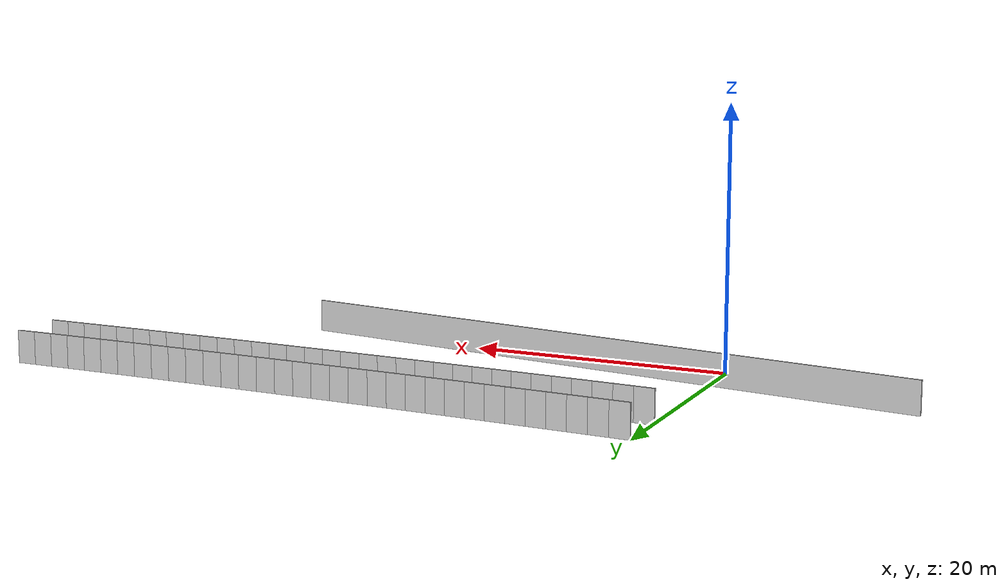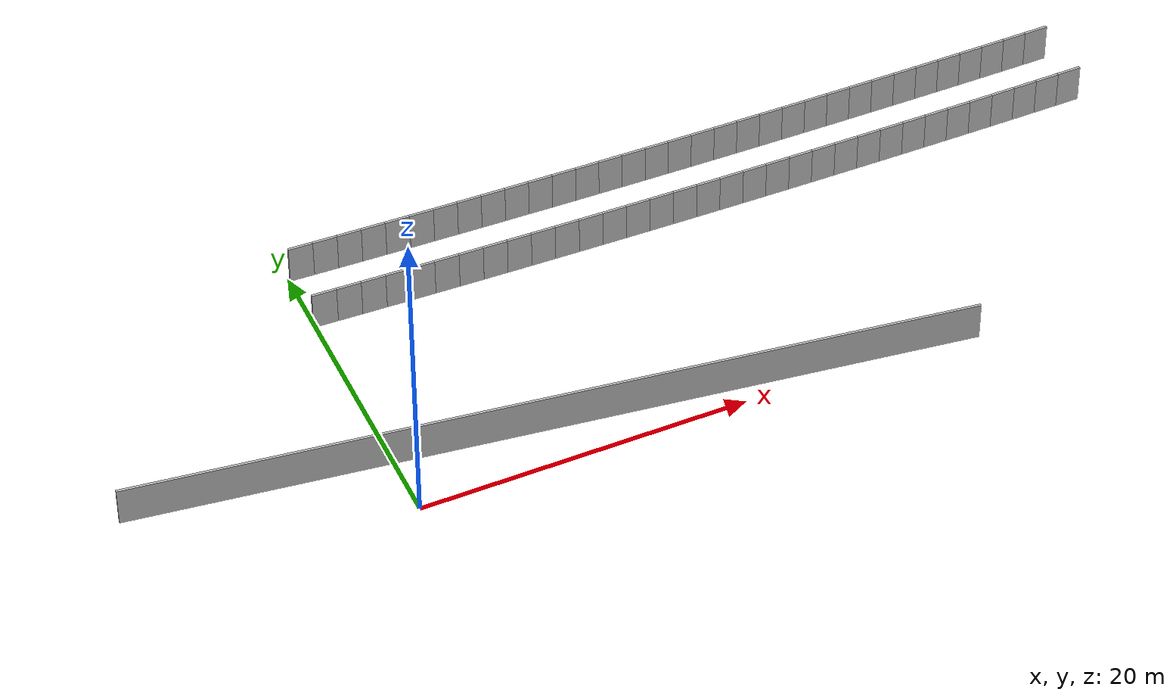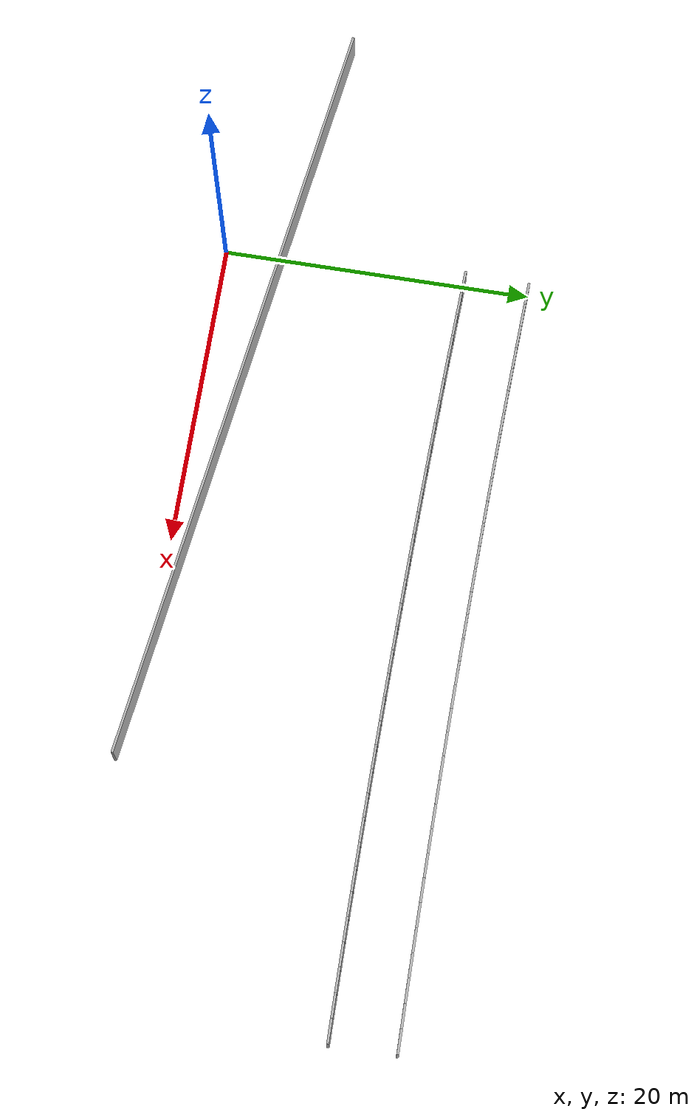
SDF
<?xml version="1.0" ?>
<sdf version="1.6">
  <model name="sps_2503">
    <pose frame="">0 0 0 0 -0 0</pose>
    <static>1</static>
    <self_collide>0</self_collide>
    <allow_auto_disable>0</allow_auto_disable>
    <link name="Wall560">
      <kinematic>0</kinematic>
      <gravity>1</gravity>
      <self_collide>0</self_collide>
      <collision name="collision">
        <geometry>
          <box>
            <size>50.4483 0.15 2.5</size>
          </box>
        </geometry>
        <pose frame="">0 0 0 0 -0 0</pose>
      </collision>
      <visual name="visual">
        <geometry>
          <box>
            <size>50.4483 0.15 2.5</size>
          </box>
        </geometry>
        <pose frame="">0 0 0 0 -0 0</pose>
        <cast_shadows>1</cast_shadows>
        <transparency>0.0</transparency>
      </visual>
      <pose frame="">9.46944 2.58366 1.25 0 0 -0.133417</pose>
    </link>
    <link name="Wall3638">
      <kinematic>0</kinematic>
      <gravity>1</gravity>
      <self_collide>0</self_collide>
      <collision name="collision">
        <geometry>
          <box>
            <size>1.49649 0.15 2.5</size>
          </box>
        </geometry>
        <pose frame="">0 0 0 0 -0 0</pose>
      </collision>
      <visual name="visual">
        <geometry>
          <box>
            <size>1.49649 0.15 2.5</size>
          </box>
        </geometry>
        <pose frame="">0 0 0 0 -0 0</pose>
        <cast_shadows>1</cast_shadows>
        <transparency>0.0</transparency>
      </visual>
      <pose frame="">0.814445 19.8738 1.25 0 0 -0.0418582</pose>
    </link>
    <link name="Wall3639">
      <kinematic>0</kinematic>
      <gravity>1</gravity>
      <self_collide>0</self_collide>
      <collision name="collision">
        <geometry>
          <box>
            <size>1.49645 0.15 2.5</size>
          </box>
        </geometry>
        <pose frame="">0 0 0 0 -0 0</pose>
      </collision>
      <visual name="visual">
        <geometry>
          <box>
            <size>1.49645 0.15 2.5</size>
          </box>
        </geometry>
        <pose frame="">0 0 0 0 -0 0</pose>
        <cast_shadows>1</cast_shadows>
        <transparency>0.0</transparency>
      </visual>
      <pose frame="">2.30965 19.8124 1.25 0 0 -0.0402265</pose>
    </link>
    <link name="Wall3640">
      <kinematic>0</kinematic>
      <gravity>1</gravity>
      <self_collide>0</self_collide>
      <collision name="collision">
        <geometry>
          <box>
            <size>1.49649 0.15 2.5</size>
          </box>
        </geometry>
        <pose frame="">0 0 0 0 -0 0</pose>
      </collision>
      <visual name="visual">
        <geometry>
          <box>
            <size>1.49649 0.15 2.5</size>
          </box>
        </geometry>
        <pose frame="">0 0 0 0 -0 0</pose>
        <cast_shadows>1</cast_shadows>
        <transparency>0.0</transparency>
      </visual>
      <pose frame="">3.80495 19.7533 1.25 0 0 -0.0387561</pose>
    </link>
    <link name="Wall3641">
      <kinematic>0</kinematic>
      <gravity>1</gravity>
      <self_collide>0</self_collide>
      <collision name="collision">
        <geometry>
          <box>
            <size>1.49663 0.15 2.5</size>
          </box>
        </geometry>
        <pose frame="">0 0 0 0 -0 0</pose>
      </collision>
      <visual name="visual">
        <geometry>
          <box>
            <size>1.49663 0.15 2.5</size>
          </box>
        </geometry>
        <pose frame="">0 0 0 0 -0 0</pose>
        <cast_shadows>1</cast_shadows>
        <transparency>0.0</transparency>
      </visual>
      <pose frame="">5.30044 19.6966 1.25 0 0 -0.0370382</pose>
    </link>
    <link name="Wall3642">
      <kinematic>0</kinematic>
      <gravity>1</gravity>
      <self_collide>0</self_collide>
      <collision name="collision">
        <geometry>
          <box>
            <size>1.49655 0.15 2.5</size>
          </box>
        </geometry>
        <pose frame="">0 0 0 0 -0 0</pose>
      </collision>
      <visual name="visual">
        <geometry>
          <box>
            <size>1.49655 0.15 2.5</size>
          </box>
        </geometry>
        <pose frame="">0 0 0 0 -0 0</pose>
        <cast_shadows>1</cast_shadows>
        <transparency>0.0</transparency>
      </visual>
      <pose frame="">6.79604 19.6423 1.25 0 0 -0.035571</pose>
    </link>
    <link name="Wall3643">
      <kinematic>0</kinematic>
      <gravity>1</gravity>
      <self_collide>0</self_collide>
      <collision name="collision">
        <geometry>
          <box>
            <size>1.49647 0.15 2.5</size>
          </box>
        </geometry>
        <pose frame="">0 0 0 0 -0 0</pose>
      </collision>
      <visual name="visual">
        <geometry>
          <box>
            <size>1.49647 0.15 2.5</size>
          </box>
        </geometry>
        <pose frame="">0 0 0 0 -0 0</pose>
        <cast_shadows>1</cast_shadows>
        <transparency>0.0</transparency>
      </visual>
      <pose frame="">8.29165 19.5903 1.25 0 0 -0.0339406</pose>
    </link>
    <link name="Wall3644">
      <kinematic>0</kinematic>
      <gravity>1</gravity>
      <self_collide>0</self_collide>
      <collision name="collision">
        <geometry>
          <box>
            <size>1.49657 0.15 2.5</size>
          </box>
        </geometry>
        <pose frame="">0 0 0 0 -0 0</pose>
      </collision>
      <visual name="visual">
        <geometry>
          <box>
            <size>1.49657 0.15 2.5</size>
          </box>
        </geometry>
        <pose frame="">0 0 0 0 -0 0</pose>
        <cast_shadows>1</cast_shadows>
        <transparency>0.0</transparency>
      </visual>
      <pose frame="">9.78735 19.5407 1.25 0 0 -0.0323468</pose>
    </link>
    <link name="Wall3645">
      <kinematic>0</kinematic>
      <gravity>1</gravity>
      <self_collide>0</self_collide>
      <collision name="collision">
        <geometry>
          <box>
            <size>1.4965 0.15 2.5</size>
          </box>
        </geometry>
        <pose frame="">0 0 0 0 -0 0</pose>
      </collision>
      <visual name="visual">
        <geometry>
          <box>
            <size>1.4965 0.15 2.5</size>
          </box>
        </geometry>
        <pose frame="">0 0 0 0 -0 0</pose>
        <cast_shadows>1</cast_shadows>
        <transparency>0.0</transparency>
      </visual>
      <pose frame="">11.2831 19.4935 1.25 0 0 -0.030757</pose>
    </link>
    <link name="Wall3646">
      <kinematic>0</kinematic>
      <gravity>1</gravity>
      <self_collide>0</self_collide>
      <collision name="collision">
        <geometry>
          <box>
            <size>1.49648 0.15 2.5</size>
          </box>
        </geometry>
        <pose frame="">0 0 0 0 -0 0</pose>
      </collision>
      <visual name="visual">
        <geometry>
          <box>
            <size>1.49648 0.15 2.5</size>
          </box>
        </geometry>
        <pose frame="">0 0 0 0 -0 0</pose>
        <cast_shadows>1</cast_shadows>
        <transparency>0.0</transparency>
      </visual>
      <pose frame="">12.779 19.4487 1.25 0 0 -0.0291251</pose>
    </link>
    <link name="Wall3647">
      <kinematic>0</kinematic>
      <gravity>1</gravity>
      <self_collide>0</self_collide>
      <collision name="collision">
        <geometry>
          <box>
            <size>1.49654 0.15 2.5</size>
          </box>
        </geometry>
        <pose frame="">0 0 0 0 -0 0</pose>
      </collision>
      <visual name="visual">
        <geometry>
          <box>
            <size>1.49654 0.15 2.5</size>
          </box>
        </geometry>
        <pose frame="">0 0 0 0 -0 0</pose>
        <cast_shadows>1</cast_shadows>
        <transparency>0.0</transparency>
      </visual>
      <pose frame="">14.2749 19.4063 1.25 0 0 -0.0275328</pose>
    </link>
    <link name="Wall3648">
      <kinematic>0</kinematic>
      <gravity>1</gravity>
      <self_collide>0</self_collide>
      <collision name="collision">
        <geometry>
          <box>
            <size>1.49654 0.15 2.5</size>
          </box>
        </geometry>
        <pose frame="">0 0 0 0 -0 0</pose>
      </collision>
      <visual name="visual">
        <geometry>
          <box>
            <size>1.49654 0.15 2.5</size>
          </box>
        </geometry>
        <pose frame="">0 0 0 0 -0 0</pose>
        <cast_shadows>1</cast_shadows>
        <transparency>0.0</transparency>
      </visual>
      <pose frame="">15.7709 19.3662 1.25 0 0 -0.026064</pose>
    </link>
    <link name="Wall3649">
      <kinematic>0</kinematic>
      <gravity>1</gravity>
      <self_collide>0</self_collide>
      <collision name="collision">
        <geometry>
          <box>
            <size>1.4966 0.15 2.5</size>
          </box>
        </geometry>
        <pose frame="">0 0 0 0 -0 0</pose>
      </collision>
      <visual name="visual">
        <geometry>
          <box>
            <size>1.4966 0.15 2.5</size>
          </box>
        </geometry>
        <pose frame="">0 0 0 0 -0 0</pose>
        <cast_shadows>1</cast_shadows>
        <transparency>0.0</transparency>
      </visual>
      <pose frame="">17.267 19.3284 1.25 0 0 -0.0244719</pose>
    </link>
    <link name="Wall3650">
      <kinematic>0</kinematic>
      <gravity>1</gravity>
      <self_collide>0</self_collide>
      <collision name="collision">
        <geometry>
          <box>
            <size>1.49642 0.15 2.5</size>
          </box>
        </geometry>
        <pose frame="">0 0 0 0 -0 0</pose>
      </collision>
      <visual name="visual">
        <geometry>
          <box>
            <size>1.49642 0.15 2.5</size>
          </box>
        </geometry>
        <pose frame="">0 0 0 0 -0 0</pose>
        <cast_shadows>1</cast_shadows>
        <transparency>0.0</transparency>
      </visual>
      <pose frame="">18.7631 19.2931 1.25 0 0 -0.0227206</pose>
    </link>
    <link name="Wall3651">
      <kinematic>0</kinematic>
      <gravity>1</gravity>
      <self_collide>0</self_collide>
      <collision name="collision">
        <geometry>
          <box>
            <size>1.49655 0.15 2.5</size>
          </box>
        </geometry>
        <pose frame="">0 0 0 0 -0 0</pose>
      </collision>
      <visual name="visual">
        <geometry>
          <box>
            <size>1.49655 0.15 2.5</size>
          </box>
        </geometry>
        <pose frame="">0 0 0 0 -0 0</pose>
        <cast_shadows>1</cast_shadows>
        <transparency>0.0</transparency>
      </visual>
      <pose frame="">20.2592 19.2602 1.25 0 0 -0.02125</pose>
    </link>
    <link name="Wall3652">
      <kinematic>0</kinematic>
      <gravity>1</gravity>
      <self_collide>0</self_collide>
      <collision name="collision">
        <geometry>
          <box>
            <size>1.49645 0.15 2.5</size>
          </box>
        </geometry>
        <pose frame="">0 0 0 0 -0 0</pose>
      </collision>
      <visual name="visual">
        <geometry>
          <box>
            <size>1.49645 0.15 2.5</size>
          </box>
        </geometry>
        <pose frame="">0 0 0 0 -0 0</pose>
        <cast_shadows>1</cast_shadows>
        <transparency>0.0</transparency>
      </visual>
      <pose frame="">21.7554 19.2295 1.25 0 0 -0.0197828</pose>
    </link>
    <link name="Wall3653">
      <kinematic>0</kinematic>
      <gravity>1</gravity>
      <self_collide>0</self_collide>
      <collision name="collision">
        <geometry>
          <box>
            <size>1.49646 0.15 2.5</size>
          </box>
        </geometry>
        <pose frame="">0 0 0 0 -0 0</pose>
      </collision>
      <visual name="visual">
        <geometry>
          <box>
            <size>1.49646 0.15 2.5</size>
          </box>
        </geometry>
        <pose frame="">0 0 0 0 -0 0</pose>
        <cast_shadows>1</cast_shadows>
        <transparency>0.0</transparency>
      </visual>
      <pose frame="">23.2515 19.2012 1.25 0 0 -0.0180286</pose>
    </link>
    <link name="Wall3654">
      <kinematic>0</kinematic>
      <gravity>1</gravity>
      <self_collide>0</self_collide>
      <collision name="collision">
        <geometry>
          <box>
            <size>1.4966 0.15 2.5</size>
          </box>
        </geometry>
        <pose frame="">0 0 0 0 -0 0</pose>
      </collision>
      <visual name="visual">
        <geometry>
          <box>
            <size>1.4966 0.15 2.5</size>
          </box>
        </geometry>
        <pose frame="">0 0 0 0 -0 0</pose>
        <cast_shadows>1</cast_shadows>
        <transparency>0.0</transparency>
      </visual>
      <pose frame="">24.7479 19.1754 1.25 0 0 -0.0164361</pose>
    </link>
    <link name="Wall3655">
      <kinematic>0</kinematic>
      <gravity>1</gravity>
      <self_collide>0</self_collide>
      <collision name="collision">
        <geometry>
          <box>
            <size>1.49657 0.15 2.5</size>
          </box>
        </geometry>
        <pose frame="">0 0 0 0 -0 0</pose>
      </collision>
      <visual name="visual">
        <geometry>
          <box>
            <size>1.49657 0.15 2.5</size>
          </box>
        </geometry>
        <pose frame="">0 0 0 0 -0 0</pose>
        <cast_shadows>1</cast_shadows>
        <transparency>0.0</transparency>
      </visual>
      <pose frame="">26.2443 19.1519 1.25 0 0 -0.0149681</pose>
    </link>
    <link name="Wall3656">
      <kinematic>0</kinematic>
      <gravity>1</gravity>
      <self_collide>0</self_collide>
      <collision name="collision">
        <geometry>
          <box>
            <size>1.49653 0.15 2.5</size>
          </box>
        </geometry>
        <pose frame="">0 0 0 0 -0 0</pose>
      </collision>
      <visual name="visual">
        <geometry>
          <box>
            <size>1.49653 0.15 2.5</size>
          </box>
        </geometry>
        <pose frame="">0 0 0 0 -0 0</pose>
        <cast_shadows>1</cast_shadows>
        <transparency>0.0</transparency>
      </visual>
      <pose frame="">27.7407 19.1307 1.25 0 0 -0.0133777</pose>
    </link>
    <link name="Wall3657">
      <kinematic>0</kinematic>
      <gravity>1</gravity>
      <self_collide>0</self_collide>
      <collision name="collision">
        <geometry>
          <box>
            <size>1.49668 0.15 2.5</size>
          </box>
        </geometry>
        <pose frame="">0 0 0 0 -0 0</pose>
      </collision>
      <visual name="visual">
        <geometry>
          <box>
            <size>1.49668 0.15 2.5</size>
          </box>
        </geometry>
        <pose frame="">0 0 0 0 -0 0</pose>
        <cast_shadows>1</cast_shadows>
        <transparency>0.0</transparency>
      </visual>
      <pose frame="">29.2371 19.112 1.25 0 0 -0.0116226</pose>
    </link>
    <link name="Wall3658">
      <kinematic>0</kinematic>
      <gravity>1</gravity>
      <self_collide>0</self_collide>
      <collision name="collision">
        <geometry>
          <box>
            <size>1.49648 0.15 2.5</size>
          </box>
        </geometry>
        <pose frame="">0 0 0 0 -0 0</pose>
      </collision>
      <visual name="visual">
        <geometry>
          <box>
            <size>1.49648 0.15 2.5</size>
          </box>
        </geometry>
        <pose frame="">0 0 0 0 -0 0</pose>
        <cast_shadows>1</cast_shadows>
        <transparency>0.0</transparency>
      </visual>
      <pose frame="">30.7336 19.0957 1.25 0 0 -0.0101559</pose>
    </link>
    <link name="Wall3659">
      <kinematic>0</kinematic>
      <gravity>1</gravity>
      <self_collide>0</self_collide>
      <collision name="collision">
        <geometry>
          <box>
            <size>1.49645 0.15 2.5</size>
          </box>
        </geometry>
        <pose frame="">0 0 0 0 -0 0</pose>
      </collision>
      <visual name="visual">
        <geometry>
          <box>
            <size>1.49645 0.15 2.5</size>
          </box>
        </geometry>
        <pose frame="">0 0 0 0 -0 0</pose>
        <cast_shadows>1</cast_shadows>
        <transparency>0.0</transparency>
      </visual>
      <pose frame="">32.23 19.0817 1.25 0 0 -0.00856528</pose>
    </link>
    <link name="Wall3660">
      <kinematic>0</kinematic>
      <gravity>1</gravity>
      <self_collide>0</self_collide>
      <collision name="collision">
        <geometry>
          <box>
            <size>1.49644 0.15 2.5</size>
          </box>
        </geometry>
        <pose frame="">0 0 0 0 -0 0</pose>
      </collision>
      <visual name="visual">
        <geometry>
          <box>
            <size>1.49644 0.15 2.5</size>
          </box>
        </geometry>
        <pose frame="">0 0 0 0 -0 0</pose>
        <cast_shadows>1</cast_shadows>
        <transparency>0.0</transparency>
      </visual>
      <pose frame="">33.7264 19.07 1.25 0 0 -0.00705621</pose>
    </link>
    <link name="Wall3661">
      <kinematic>0</kinematic>
      <gravity>1</gravity>
      <self_collide>0</self_collide>
      <collision name="collision">
        <geometry>
          <box>
            <size>1.49666 0.15 2.5</size>
          </box>
        </geometry>
        <pose frame="">0 0 0 0 -0 0</pose>
      </collision>
      <visual name="visual">
        <geometry>
          <box>
            <size>1.49666 0.15 2.5</size>
          </box>
        </geometry>
        <pose frame="">0 0 0 0 -0 0</pose>
        <cast_shadows>1</cast_shadows>
        <transparency>0.0</transparency>
      </visual>
      <pose frame="">35.223 19.0607 1.25 0 0 -0.00534231</pose>
    </link>
    <link name="Wall3662">
      <kinematic>0</kinematic>
      <gravity>1</gravity>
      <self_collide>0</self_collide>
      <collision name="collision">
        <geometry>
          <box>
            <size>1.49659 0.15 2.5</size>
          </box>
        </geometry>
        <pose frame="">0 0 0 0 -0 0</pose>
      </collision>
      <visual name="visual">
        <geometry>
          <box>
            <size>1.49659 0.15 2.5</size>
          </box>
        </geometry>
        <pose frame="">0 0 0 0 -0 0</pose>
        <cast_shadows>1</cast_shadows>
        <transparency>0.0</transparency>
      </visual>
      <pose frame="">36.7196 19.0538 1.25 0 0 -0.00387437</pose>
    </link>
    <link name="Wall3663">
      <kinematic>0</kinematic>
      <gravity>1</gravity>
      <self_collide>0</self_collide>
      <collision name="collision">
        <geometry>
          <box>
            <size>1.4964 0.15 2.5</size>
          </box>
        </geometry>
        <pose frame="">0 0 0 0 -0 0</pose>
      </collision>
      <visual name="visual">
        <geometry>
          <box>
            <size>1.4964 0.15 2.5</size>
          </box>
        </geometry>
        <pose frame="">0 0 0 0 -0 0</pose>
        <cast_shadows>1</cast_shadows>
        <transparency>0.0</transparency>
      </visual>
      <pose frame="">38.2161 19.0492 1.25 0 0 -0.00228413</pose>
    </link>
    <link name="Wall3664">
      <kinematic>0</kinematic>
      <gravity>1</gravity>
      <self_collide>0</self_collide>
      <collision name="collision">
        <geometry>
          <box>
            <size>1.49658 0.15 2.5</size>
          </box>
        </geometry>
        <pose frame="">0 0 0 0 -0 0</pose>
      </collision>
      <visual name="visual">
        <geometry>
          <box>
            <size>1.49658 0.15 2.5</size>
          </box>
        </geometry>
        <pose frame="">0 0 0 0 -0 0</pose>
        <cast_shadows>1</cast_shadows>
        <transparency>0.0</transparency>
      </visual>
      <pose frame="">39.7125 19.0471 1.25 0 0 -0.000530179</pose>
    </link>
    <link name="Wall3665">
      <kinematic>0</kinematic>
      <gravity>1</gravity>
      <self_collide>0</self_collide>
      <collision name="collision">
        <geometry>
          <box>
            <size>1.49664 0.15 2.5</size>
          </box>
        </geometry>
        <pose frame="">0 0 0 0 -0 0</pose>
      </collision>
      <visual name="visual">
        <geometry>
          <box>
            <size>1.49664 0.15 2.5</size>
          </box>
        </geometry>
        <pose frame="">0 0 0 0 -0 0</pose>
        <cast_shadows>1</cast_shadows>
        <transparency>0.0</transparency>
      </visual>
      <pose frame="">41.2092 19.0474 1.25 0 -0 0.000937972</pose>
    </link>
    <link name="Wall3666">
      <kinematic>0</kinematic>
      <gravity>1</gravity>
      <self_collide>0</self_collide>
      <collision name="collision">
        <geometry>
          <box>
            <size>1.4964 0.15 2.5</size>
          </box>
        </geometry>
        <pose frame="">0 0 0 0 -0 0</pose>
      </collision>
      <visual name="visual">
        <geometry>
          <box>
            <size>1.4964 0.15 2.5</size>
          </box>
        </geometry>
        <pose frame="">0 0 0 0 -0 0</pose>
        <cast_shadows>1</cast_shadows>
        <transparency>0.0</transparency>
      </visual>
      <pose frame="">42.7057 19.0499 1.25 0 -0 0.00240649</pose>
    </link>
    <link name="Wall3667">
      <kinematic>0</kinematic>
      <gravity>1</gravity>
      <self_collide>0</self_collide>
      <collision name="collision">
        <geometry>
          <box>
            <size>1.49659 0.15 2.5</size>
          </box>
        </geometry>
        <pose frame="">0 0 0 0 -0 0</pose>
      </collision>
      <visual name="visual">
        <geometry>
          <box>
            <size>1.49659 0.15 2.5</size>
          </box>
        </geometry>
        <pose frame="">0 0 0 0 -0 0</pose>
        <cast_shadows>1</cast_shadows>
        <transparency>0.0</transparency>
      </visual>
      <pose frame="">44.2022 19.0548 1.25 0 -0 0.00411906</pose>
    </link>
    <link name="Wall3668">
      <kinematic>0</kinematic>
      <gravity>1</gravity>
      <self_collide>0</self_collide>
      <collision name="collision">
        <geometry>
          <box>
            <size>1.49642 0.15 2.5</size>
          </box>
        </geometry>
        <pose frame="">0 0 0 0 -0 0</pose>
      </collision>
      <visual name="visual">
        <geometry>
          <box>
            <size>1.49642 0.15 2.5</size>
          </box>
        </geometry>
        <pose frame="">0 0 0 0 -0 0</pose>
        <cast_shadows>1</cast_shadows>
        <transparency>0.0</transparency>
      </visual>
      <pose frame="">45.6987 19.0622 1.25 0 -0 0.00575105</pose>
    </link>
    <link name="Wall3669">
      <kinematic>0</kinematic>
      <gravity>1</gravity>
      <self_collide>0</self_collide>
      <collision name="collision">
        <geometry>
          <box>
            <size>1.49644 0.15 2.5</size>
          </box>
        </geometry>
        <pose frame="">0 0 0 0 -0 0</pose>
      </collision>
      <visual name="visual">
        <geometry>
          <box>
            <size>1.49644 0.15 2.5</size>
          </box>
        </geometry>
        <pose frame="">0 0 0 0 -0 0</pose>
        <cast_shadows>1</cast_shadows>
        <transparency>0.0</transparency>
      </visual>
      <pose frame="">47.1951 19.0719 1.25 0 -0 0.00721936</pose>
    </link>
    <link name="Wall3670">
      <kinematic>0</kinematic>
      <gravity>1</gravity>
      <self_collide>0</self_collide>
      <collision name="collision">
        <geometry>
          <box>
            <size>1.49664 0.15 2.5</size>
          </box>
        </geometry>
        <pose frame="">0 0 0 0 -0 0</pose>
      </collision>
      <visual name="visual">
        <geometry>
          <box>
            <size>1.49664 0.15 2.5</size>
          </box>
        </geometry>
        <pose frame="">0 0 0 0 -0 0</pose>
        <cast_shadows>1</cast_shadows>
        <transparency>0.0</transparency>
      </visual>
      <pose frame="">48.6916 19.0839 1.25 0 -0 0.00880891</pose>
    </link>
    <link name="Wall7413">
      <kinematic>0</kinematic>
      <gravity>1</gravity>
      <self_collide>0</self_collide>
      <collision name="collision">
        <geometry>
          <box>
            <size>1.50314 0.15 2.5</size>
          </box>
        </geometry>
        <pose frame="">0 0 0 0 -0 0</pose>
      </collision>
      <visual name="visual">
        <geometry>
          <box>
            <size>1.50314 0.15 2.5</size>
          </box>
        </geometry>
        <pose frame="">0 0 0 0 -0 0</pose>
        <cast_shadows>1</cast_shadows>
        <transparency>0.0</transparency>
      </visual>
      <pose frame="">0.644553 15.7367 1.25 0 0 -0.0417947</pose>
    </link>
    <link name="Wall7414">
      <kinematic>0</kinematic>
      <gravity>1</gravity>
      <self_collide>0</self_collide>
      <collision name="collision">
        <geometry>
          <box>
            <size>1.50324 0.15 2.5</size>
          </box>
        </geometry>
        <pose frame="">0 0 0 0 -0 0</pose>
      </collision>
      <visual name="visual">
        <geometry>
          <box>
            <size>1.50324 0.15 2.5</size>
          </box>
        </geometry>
        <pose frame="">0 0 0 0 -0 0</pose>
        <cast_shadows>1</cast_shadows>
        <transparency>0.0</transparency>
      </visual>
      <pose frame="">2.14648 15.675 1.25 0 0 -0.0403292</pose>
    </link>
    <link name="Wall7415">
      <kinematic>0</kinematic>
      <gravity>1</gravity>
      <self_collide>0</self_collide>
      <collision name="collision">
        <geometry>
          <box>
            <size>1.50307 0.15 2.5</size>
          </box>
        </geometry>
        <pose frame="">0 0 0 0 -0 0</pose>
      </collision>
      <visual name="visual">
        <geometry>
          <box>
            <size>1.50307 0.15 2.5</size>
          </box>
        </geometry>
        <pose frame="">0 0 0 0 -0 0</pose>
        <cast_shadows>1</cast_shadows>
        <transparency>0.0</transparency>
      </visual>
      <pose frame="">3.64846 15.6157 1.25 0 0 -0.0385862</pose>
    </link>
    <link name="Wall7416">
      <kinematic>0</kinematic>
      <gravity>1</gravity>
      <self_collide>0</self_collide>
      <collision name="collision">
        <geometry>
          <box>
            <size>1.50323 0.15 2.5</size>
          </box>
        </geometry>
        <pose frame="">0 0 0 0 -0 0</pose>
      </collision>
      <visual name="visual">
        <geometry>
          <box>
            <size>1.50323 0.15 2.5</size>
          </box>
        </geometry>
        <pose frame="">0 0 0 0 -0 0</pose>
        <cast_shadows>1</cast_shadows>
        <transparency>0.0</transparency>
      </visual>
      <pose frame="">5.15053 15.5588 1.25 0 0 -0.0371193</pose>
    </link>
    <link name="Wall7417">
      <kinematic>0</kinematic>
      <gravity>1</gravity>
      <self_collide>0</self_collide>
      <collision name="collision">
        <geometry>
          <box>
            <size>1.50296 0.15 2.5</size>
          </box>
        </geometry>
        <pose frame="">0 0 0 0 -0 0</pose>
      </collision>
      <visual name="visual">
        <geometry>
          <box>
            <size>1.50296 0.15 2.5</size>
          </box>
        </geometry>
        <pose frame="">0 0 0 0 -0 0</pose>
        <cast_shadows>1</cast_shadows>
        <transparency>0.0</transparency>
      </visual>
      <pose frame="">6.65264 15.5043 1.25 0 0 -0.0354194</pose>
    </link>
    <link name="Wall7418">
      <kinematic>0</kinematic>
      <gravity>1</gravity>
      <self_collide>0</self_collide>
      <collision name="collision">
        <geometry>
          <box>
            <size>1.50307 0.15 2.5</size>
          </box>
        </geometry>
        <pose frame="">0 0 0 0 -0 0</pose>
      </collision>
      <visual name="visual">
        <geometry>
          <box>
            <size>1.50307 0.15 2.5</size>
          </box>
        </geometry>
        <pose frame="">0 0 0 0 -0 0</pose>
        <cast_shadows>1</cast_shadows>
        <transparency>0.0</transparency>
      </visual>
      <pose frame="">8.15475 15.4521 1.25 0 0 -0.0340759</pose>
    </link>
    <link name="Wall7419">
      <kinematic>0</kinematic>
      <gravity>1</gravity>
      <self_collide>0</self_collide>
      <collision name="collision">
        <geometry>
          <box>
            <size>1.50298 0.15 2.5</size>
          </box>
        </geometry>
        <pose frame="">0 0 0 0 -0 0</pose>
      </collision>
      <visual name="visual">
        <geometry>
          <box>
            <size>1.50298 0.15 2.5</size>
          </box>
        </geometry>
        <pose frame="">0 0 0 0 -0 0</pose>
        <cast_shadows>1</cast_shadows>
        <transparency>0.0</transparency>
      </visual>
      <pose frame="">9.65694 15.4022 1.25 0 0 -0.0323307</pose>
    </link>
    <link name="Wall7420">
      <kinematic>0</kinematic>
      <gravity>1</gravity>
      <self_collide>0</self_collide>
      <collision name="collision">
        <geometry>
          <box>
            <size>1.50315 0.15 2.5</size>
          </box>
        </geometry>
        <pose frame="">0 0 0 0 -0 0</pose>
      </collision>
      <visual name="visual">
        <geometry>
          <box>
            <size>1.50315 0.15 2.5</size>
          </box>
        </geometry>
        <pose frame="">0 0 0 0 -0 0</pose>
        <cast_shadows>1</cast_shadows>
        <transparency>0.0</transparency>
      </visual>
      <pose frame="">11.1593 15.3548 1.25 0 0 -0.0307427</pose>
    </link>
    <link name="Wall7421">
      <kinematic>0</kinematic>
      <gravity>1</gravity>
      <self_collide>0</self_collide>
      <collision name="collision">
        <geometry>
          <box>
            <size>1.50301 0.15 2.5</size>
          </box>
        </geometry>
        <pose frame="">0 0 0 0 -0 0</pose>
      </collision>
      <visual name="visual">
        <geometry>
          <box>
            <size>1.50301 0.15 2.5</size>
          </box>
        </geometry>
        <pose frame="">0 0 0 0 -0 0</pose>
        <cast_shadows>1</cast_shadows>
        <transparency>0.0</transparency>
      </visual>
      <pose frame="">12.6617 15.3099 1.25 0 0 -0.0289986</pose>
    </link>
    <link name="Wall7422">
      <kinematic>0</kinematic>
      <gravity>1</gravity>
      <self_collide>0</self_collide>
      <collision name="collision">
        <geometry>
          <box>
            <size>1.50313 0.15 2.5</size>
          </box>
        </geometry>
        <pose frame="">0 0 0 0 -0 0</pose>
      </collision>
      <visual name="visual">
        <geometry>
          <box>
            <size>1.50313 0.15 2.5</size>
          </box>
        </geometry>
        <pose frame="">0 0 0 0 -0 0</pose>
        <cast_shadows>1</cast_shadows>
        <transparency>0.0</transparency>
      </visual>
      <pose frame="">14.1641 15.2674 1.25 0 0 -0.0275339</pose>
    </link>
    <link name="Wall7423">
      <kinematic>0</kinematic>
      <gravity>1</gravity>
      <self_collide>0</self_collide>
      <collision name="collision">
        <geometry>
          <box>
            <size>1.50314 0.15 2.5</size>
          </box>
        </geometry>
        <pose frame="">0 0 0 0 -0 0</pose>
      </collision>
      <visual name="visual">
        <geometry>
          <box>
            <size>1.50314 0.15 2.5</size>
          </box>
        </geometry>
        <pose frame="">0 0 0 0 -0 0</pose>
        <cast_shadows>1</cast_shadows>
        <transparency>0.0</transparency>
      </visual>
      <pose frame="">15.6667 15.2271 1.25 0 0 -0.0261121</pose>
    </link>
    <link name="Wall7424">
      <kinematic>0</kinematic>
      <gravity>1</gravity>
      <self_collide>0</self_collide>
      <collision name="collision">
        <geometry>
          <box>
            <size>1.50307 0.15 2.5</size>
          </box>
        </geometry>
        <pose frame="">0 0 0 0 -0 0</pose>
      </collision>
      <visual name="visual">
        <geometry>
          <box>
            <size>1.50307 0.15 2.5</size>
          </box>
        </geometry>
        <pose frame="">0 0 0 0 -0 0</pose>
        <cast_shadows>1</cast_shadows>
        <transparency>0.0</transparency>
      </visual>
      <pose frame="">17.1694 15.1892 1.25 0 0 -0.024326</pose>
    </link>
    <link name="Wall7425">
      <kinematic>0</kinematic>
      <gravity>1</gravity>
      <self_collide>0</self_collide>
      <collision name="collision">
        <geometry>
          <box>
            <size>1.50296 0.15 2.5</size>
          </box>
        </geometry>
        <pose frame="">0 0 0 0 -0 0</pose>
      </collision>
      <visual name="visual">
        <geometry>
          <box>
            <size>1.50296 0.15 2.5</size>
          </box>
        </geometry>
        <pose frame="">0 0 0 0 -0 0</pose>
        <cast_shadows>1</cast_shadows>
        <transparency>0.0</transparency>
      </visual>
      <pose frame="">18.672 15.1537 1.25 0 0 -0.0229061</pose>
    </link>
    <link name="Wall7426">
      <kinematic>0</kinematic>
      <gravity>1</gravity>
      <self_collide>0</self_collide>
      <collision name="collision">
        <geometry>
          <box>
            <size>1.50314 0.15 2.5</size>
          </box>
        </geometry>
        <pose frame="">0 0 0 0 -0 0</pose>
      </collision>
      <visual name="visual">
        <geometry>
          <box>
            <size>1.50314 0.15 2.5</size>
          </box>
        </geometry>
        <pose frame="">0 0 0 0 -0 0</pose>
        <cast_shadows>1</cast_shadows>
        <transparency>0.0</transparency>
      </visual>
      <pose frame="">20.1746 15.1206 1.25 0 0 -0.0211568</pose>
    </link>
    <link name="Wall7427">
      <kinematic>0</kinematic>
      <gravity>1</gravity>
      <self_collide>0</self_collide>
      <collision name="collision">
        <geometry>
          <box>
            <size>1.5031 0.15 2.5</size>
          </box>
        </geometry>
        <pose frame="">0 0 0 0 -0 0</pose>
      </collision>
      <visual name="visual">
        <geometry>
          <box>
            <size>1.5031 0.15 2.5</size>
          </box>
        </geometry>
        <pose frame="">0 0 0 0 -0 0</pose>
        <cast_shadows>1</cast_shadows>
        <transparency>0.0</transparency>
      </visual>
      <pose frame="">21.6775 15.0899 1.25 0 0 -0.0196953</pose>
    </link>
    <link name="Wall7428">
      <kinematic>0</kinematic>
      <gravity>1</gravity>
      <self_collide>0</self_collide>
      <collision name="collision">
        <geometry>
          <box>
            <size>1.50305 0.15 2.5</size>
          </box>
        </geometry>
        <pose frame="">0 0 0 0 -0 0</pose>
      </collision>
      <visual name="visual">
        <geometry>
          <box>
            <size>1.50305 0.15 2.5</size>
          </box>
        </geometry>
        <pose frame="">0 0 0 0 -0 0</pose>
        <cast_shadows>1</cast_shadows>
        <transparency>0.0</transparency>
      </visual>
      <pose frame="">23.1803 15.0615 1.25 0 0 -0.0181119</pose>
    </link>
    <link name="Wall7429">
      <kinematic>0</kinematic>
      <gravity>1</gravity>
      <self_collide>0</self_collide>
      <collision name="collision">
        <geometry>
          <box>
            <size>1.50319 0.15 2.5</size>
          </box>
        </geometry>
        <pose frame="">0 0 0 0 -0 0</pose>
      </collision>
      <visual name="visual">
        <geometry>
          <box>
            <size>1.50319 0.15 2.5</size>
          </box>
        </geometry>
        <pose frame="">0 0 0 0 -0 0</pose>
        <cast_shadows>1</cast_shadows>
        <transparency>0.0</transparency>
      </visual>
      <pose frame="">24.6832 15.0355 1.25 0 0 -0.0164858</pose>
    </link>
    <link name="Wall7430">
      <kinematic>0</kinematic>
      <gravity>1</gravity>
      <self_collide>0</self_collide>
      <collision name="collision">
        <geometry>
          <box>
            <size>1.50297 0.15 2.5</size>
          </box>
        </geometry>
        <pose frame="">0 0 0 0 -0 0</pose>
      </collision>
      <visual name="visual">
        <geometry>
          <box>
            <size>1.50297 0.15 2.5</size>
          </box>
        </geometry>
        <pose frame="">0 0 0 0 -0 0</pose>
        <cast_shadows>1</cast_shadows>
        <transparency>0.0</transparency>
      </visual>
      <pose frame="">26.1861 15.0119 1.25 0 0 -0.0149043</pose>
    </link>
    <link name="Wall7431">
      <kinematic>0</kinematic>
      <gravity>1</gravity>
      <self_collide>0</self_collide>
      <collision name="collision">
        <geometry>
          <box>
            <size>1.50313 0.15 2.5</size>
          </box>
        </geometry>
        <pose frame="">0 0 0 0 -0 0</pose>
      </collision>
      <visual name="visual">
        <geometry>
          <box>
            <size>1.50313 0.15 2.5</size>
          </box>
        </geometry>
        <pose frame="">0 0 0 0 -0 0</pose>
        <cast_shadows>1</cast_shadows>
        <transparency>0.0</transparency>
      </visual>
      <pose frame="">27.689 14.9906 1.25 0 0 -0.0134408</pose>
    </link>
    <link name="Wall7432">
      <kinematic>0</kinematic>
      <gravity>1</gravity>
      <self_collide>0</self_collide>
      <collision name="collision">
        <geometry>
          <box>
            <size>1.50309 0.15 2.5</size>
          </box>
        </geometry>
        <pose frame="">0 0 0 0 -0 0</pose>
      </collision>
      <visual name="visual">
        <geometry>
          <box>
            <size>1.50309 0.15 2.5</size>
          </box>
        </geometry>
        <pose frame="">0 0 0 0 -0 0</pose>
        <cast_shadows>1</cast_shadows>
        <transparency>0.0</transparency>
      </visual>
      <pose frame="">29.1919 14.9717 1.25 0 0 -0.0116949</pose>
    </link>
    <link name="Wall7433">
      <kinematic>0</kinematic>
      <gravity>1</gravity>
      <self_collide>0</self_collide>
      <collision name="collision">
        <geometry>
          <box>
            <size>1.50307 0.15 2.5</size>
          </box>
        </geometry>
        <pose frame="">0 0 0 0 -0 0</pose>
      </collision>
      <visual name="visual">
        <geometry>
          <box>
            <size>1.50307 0.15 2.5</size>
          </box>
        </geometry>
        <pose frame="">0 0 0 0 -0 0</pose>
        <cast_shadows>1</cast_shadows>
        <transparency>0.0</transparency>
      </visual>
      <pose frame="">30.6949 14.9553 1.25 0 0 -0.0101113</pose>
    </link>
    <link name="Wall7434">
      <kinematic>0</kinematic>
      <gravity>1</gravity>
      <self_collide>0</self_collide>
      <collision name="collision">
        <geometry>
          <box>
            <size>1.50311 0.15 2.5</size>
          </box>
        </geometry>
        <pose frame="">0 0 0 0 -0 0</pose>
      </collision>
      <visual name="visual">
        <geometry>
          <box>
            <size>1.50311 0.15 2.5</size>
          </box>
        </geometry>
        <pose frame="">0 0 0 0 -0 0</pose>
        <cast_shadows>1</cast_shadows>
        <transparency>0.0</transparency>
      </visual>
      <pose frame="">32.198 14.9413 1.25 0 0 -0.00852737</pose>
    </link>
    <link name="Wall7435">
      <kinematic>0</kinematic>
      <gravity>1</gravity>
      <self_collide>0</self_collide>
      <collision name="collision">
        <geometry>
          <box>
            <size>1.50303 0.15 2.5</size>
          </box>
        </geometry>
        <pose frame="">0 0 0 0 -0 0</pose>
      </collision>
      <visual name="visual">
        <geometry>
          <box>
            <size>1.50303 0.15 2.5</size>
          </box>
        </geometry>
        <pose frame="">0 0 0 0 -0 0</pose>
        <cast_shadows>1</cast_shadows>
        <transparency>0.0</transparency>
      </visual>
      <pose frame="">33.701 14.9296 1.25 0 0 -0.00706587</pose>
    </link>
    <link name="Wall7436">
      <kinematic>0</kinematic>
      <gravity>1</gravity>
      <self_collide>0</self_collide>
      <collision name="collision">
        <geometry>
          <box>
            <size>1.5032 0.15 2.5</size>
          </box>
        </geometry>
        <pose frame="">0 0 0 0 -0 0</pose>
      </collision>
      <visual name="visual">
        <geometry>
          <box>
            <size>1.5032 0.15 2.5</size>
          </box>
        </geometry>
        <pose frame="">0 0 0 0 -0 0</pose>
        <cast_shadows>1</cast_shadows>
        <transparency>0.0</transparency>
      </visual>
      <pose frame="">35.2041 14.9202 1.25 0 0 -0.00544091</pose>
    </link>
    <link name="Wall7437">
      <kinematic>0</kinematic>
      <gravity>1</gravity>
      <self_collide>0</self_collide>
      <collision name="collision">
        <geometry>
          <box>
            <size>1.503 0.15 2.5</size>
          </box>
        </geometry>
        <pose frame="">0 0 0 0 -0 0</pose>
      </collision>
      <visual name="visual">
        <geometry>
          <box>
            <size>1.503 0.15 2.5</size>
          </box>
        </geometry>
        <pose frame="">0 0 0 0 -0 0</pose>
        <cast_shadows>1</cast_shadows>
        <transparency>0.0</transparency>
      </visual>
      <pose frame="">36.7071 14.9133 1.25 0 0 -0.00373602</pose>
    </link>
    <link name="Wall7438">
      <kinematic>0</kinematic>
      <gravity>1</gravity>
      <self_collide>0</self_collide>
      <collision name="collision">
        <geometry>
          <box>
            <size>1.50299 0.15 2.5</size>
          </box>
        </geometry>
        <pose frame="">0 0 0 0 -0 0</pose>
      </collision>
      <visual name="visual">
        <geometry>
          <box>
            <size>1.50299 0.15 2.5</size>
          </box>
        </geometry>
        <pose frame="">0 0 0 0 -0 0</pose>
        <cast_shadows>1</cast_shadows>
        <transparency>0.0</transparency>
      </visual>
      <pose frame="">38.2101 14.9088 1.25 0 0 -0.0022335</pose>
    </link>
    <link name="Wall7439">
      <kinematic>0</kinematic>
      <gravity>1</gravity>
      <self_collide>0</self_collide>
      <collision name="collision">
        <geometry>
          <box>
            <size>1.50324 0.15 2.5</size>
          </box>
        </geometry>
        <pose frame="">0 0 0 0 -0 0</pose>
      </collision>
      <visual name="visual">
        <geometry>
          <box>
            <size>1.50324 0.15 2.5</size>
          </box>
        </geometry>
        <pose frame="">0 0 0 0 -0 0</pose>
        <cast_shadows>1</cast_shadows>
        <transparency>0.0</transparency>
      </visual>
      <pose frame="">39.7132 14.9066 1.25 0 0 -0.000690243</pose>
    </link>
    <link name="Wall7440">
      <kinematic>0</kinematic>
      <gravity>1</gravity>
      <self_collide>0</self_collide>
      <collision name="collision">
        <geometry>
          <box>
            <size>1.50299 0.15 2.5</size>
          </box>
        </geometry>
        <pose frame="">0 0 0 0 -0 0</pose>
      </collision>
      <visual name="visual">
        <geometry>
          <box>
            <size>1.50299 0.15 2.5</size>
          </box>
        </geometry>
        <pose frame="">0 0 0 0 -0 0</pose>
        <cast_shadows>1</cast_shadows>
        <transparency>0.0</transparency>
      </visual>
      <pose frame="">41.2164 14.9068 1.25 0 -0 0.00093401</pose>
    </link>
    <link name="Wall7441">
      <kinematic>0</kinematic>
      <gravity>1</gravity>
      <self_collide>0</self_collide>
      <collision name="collision">
        <geometry>
          <box>
            <size>1.50318 0.15 2.5</size>
          </box>
        </geometry>
        <pose frame="">0 0 0 0 -0 0</pose>
      </collision>
      <visual name="visual">
        <geometry>
          <box>
            <size>1.50318 0.15 2.5</size>
          </box>
        </geometry>
        <pose frame="">0 0 0 0 -0 0</pose>
        <cast_shadows>1</cast_shadows>
        <transparency>0.0</transparency>
      </visual>
      <pose frame="">42.7194 14.9094 1.25 0 -0 0.00251745</pose>
    </link>
    <link name="Wall7442">
      <kinematic>0</kinematic>
      <gravity>1</gravity>
      <self_collide>0</self_collide>
      <collision name="collision">
        <geometry>
          <box>
            <size>1.50306 0.15 2.5</size>
          </box>
        </geometry>
        <pose frame="">0 0 0 0 -0 0</pose>
      </collision>
      <visual name="visual">
        <geometry>
          <box>
            <size>1.50306 0.15 2.5</size>
          </box>
        </geometry>
        <pose frame="">0 0 0 0 -0 0</pose>
        <cast_shadows>1</cast_shadows>
        <transparency>0.0</transparency>
      </visual>
      <pose frame="">44.2226 14.9144 1.25 0 -0 0.00414194</pose>
    </link>
    <link name="Wall7443">
      <kinematic>0</kinematic>
      <gravity>1</gravity>
      <self_collide>0</self_collide>
      <collision name="collision">
        <geometry>
          <box>
            <size>1.50302 0.15 2.5</size>
          </box>
        </geometry>
        <pose frame="">0 0 0 0 -0 0</pose>
      </collision>
      <visual name="visual">
        <geometry>
          <box>
            <size>1.50302 0.15 2.5</size>
          </box>
        </geometry>
        <pose frame="">0 0 0 0 -0 0</pose>
        <cast_shadows>1</cast_shadows>
        <transparency>0.0</transparency>
      </visual>
      <pose frame="">45.7256 14.9218 1.25 0 -0 0.00572583</pose>
    </link>
    <link name="Wall7444">
      <kinematic>0</kinematic>
      <gravity>1</gravity>
      <self_collide>0</self_collide>
      <collision name="collision">
        <geometry>
          <box>
            <size>1.50321 0.15 2.5</size>
          </box>
        </geometry>
        <pose frame="">0 0 0 0 -0 0</pose>
      </collision>
      <visual name="visual">
        <geometry>
          <box>
            <size>1.50321 0.15 2.5</size>
          </box>
        </geometry>
        <pose frame="">0 0 0 0 -0 0</pose>
        <cast_shadows>1</cast_shadows>
        <transparency>0.0</transparency>
      </visual>
      <pose frame="">47.2287 14.9315 1.25 0 -0 0.00718682</pose>
    </link>
    <link name="Wall7445">
      <kinematic>0</kinematic>
      <gravity>1</gravity>
      <self_collide>0</self_collide>
      <collision name="collision">
        <geometry>
          <box>
            <size>1.50305 0.15 2.5</size>
          </box>
        </geometry>
        <pose frame="">0 0 0 0 -0 0</pose>
      </collision>
      <visual name="visual">
        <geometry>
          <box>
            <size>1.50305 0.15 2.5</size>
          </box>
        </geometry>
        <pose frame="">0 0 0 0 -0 0</pose>
        <cast_shadows>1</cast_shadows>
        <transparency>0.0</transparency>
      </visual>
      <pose frame="">48.7317 14.9436 1.25 0 -0 0.00889317</pose>
    </link>
  </model>
</sdf>
